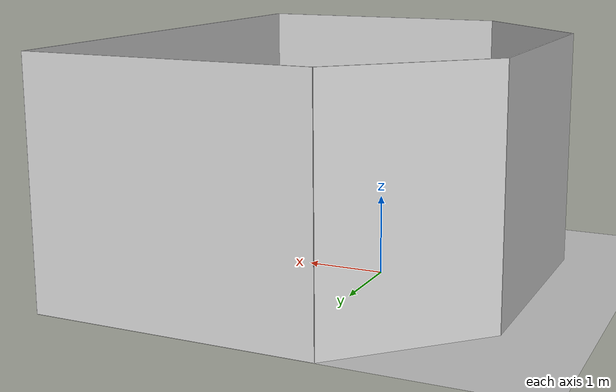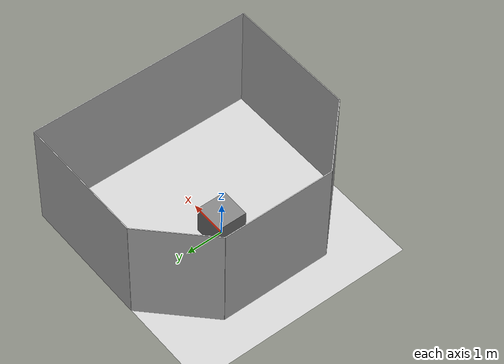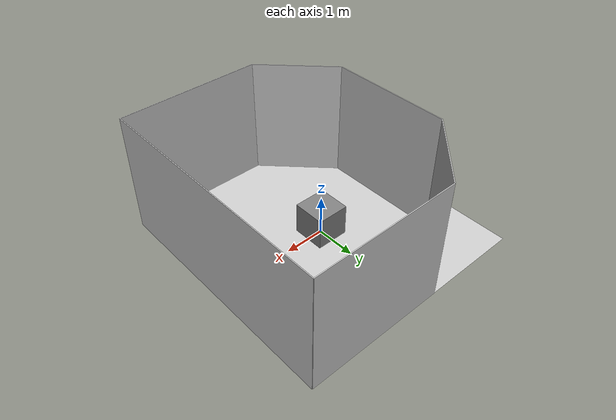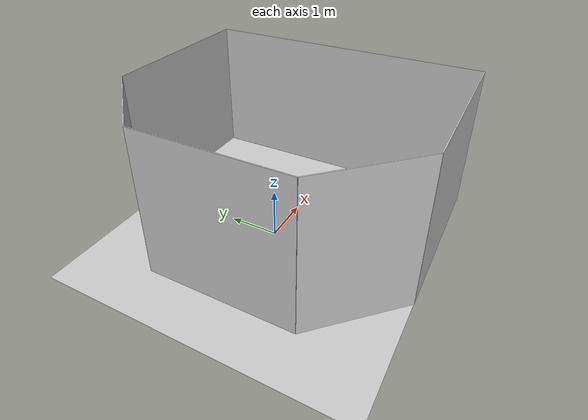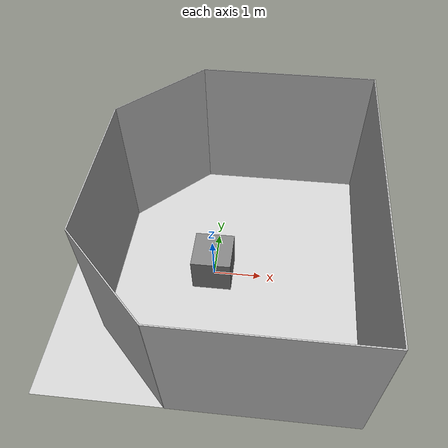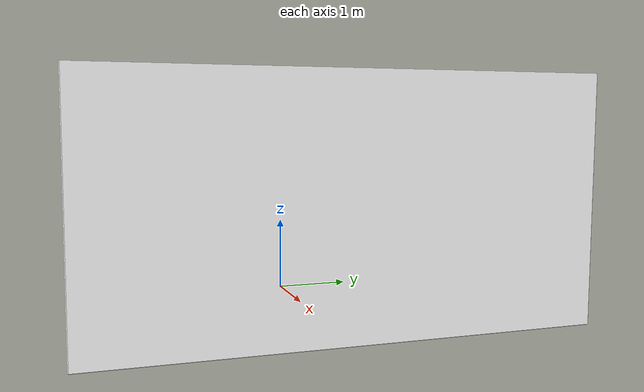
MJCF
<mujoco model="table_arena">
  <asset>
    <texture builtin="gradient" height="256" rgb1=".9 .9 1." rgb2=".2 .3 .4" type="skybox" width="256"/>
    <texture file="../textures/light-gray-floor-tile.png" type="2d" name="texplane"/>
    <material name="floorplane" reflectance="0.01" shininess="0.0" specular="0.0" texrepeat="2 2" texture="texplane" texuniform="true"/>
    <!-- ceramic table texture and material-->
    <texture file="../textures/ceramic.png" type="cube" name="tex-ceramic"/>
    <material name="table_ceramic" reflectance="0.0" shininess="0.0" specular="0.2" texrepeat="1 1" texture="tex-ceramic" />
    <!-- steel legs -->
    <texture file="../textures/steel-brushed.png" type="cube" name="tex-steel-brushed"/>
    <material name="table_legs_metal" reflectance="0.8" shininess="0.8" texrepeat="1 1" texture="tex-steel-brushed" />
    <!-- plaster walls -->
    <texture file="../textures/light-gray-plaster.png" type="2d" name="tex-light-gray-plaster"/>
    <material name="walls_mat" reflectance="0.0" shininess="0.1" specular="0.1" texrepeat="3 3" texture="tex-light-gray-plaster" texuniform="true" />
    <!-- added table texture and material -->
    <texture  name="cherry" builtin="flat" height="512" width="512" rgb1="0.65 0.36 0.33" rgb2="0.65 0.36 0.33"/>
    <material name="cherry" texture="cherry" />
    <texture  name="dark" builtin="flat" height="512" width="512" rgb1="0.1 0.1 0.1" rgb2="0.1 0.1 0.1"/>
    <material name="dark" texture="dark" />
    <texture  name="white" builtin="flat" height="512" width="512" rgb1="1.0 1.0 1.0" rgb2="1.0 1.0 1.0"/>
    <material name="white" texture="white" />
    <texture file="../textures/light-wood.png" type="2d" name="tex-light-wood"/>
    <texture file="../textures/dark-wood.png" type="2d" name="tex-dark-wood"/>
    <material name="light-wood" reflectance="0" texrepeat="2 2" texture="tex-light-wood" texuniform="true"/>
    <material name="dark-wood" reflectance="0" texrepeat="2 2" texture="tex-dark-wood" texuniform="true"/>
    <texture file="../textures/martin_novak_wood_table.png" type="2d" name="tex-novak-wood"/>
    <material name="novak-wood" reflectance="0" texrepeat="2 2" texture="tex-novak-wood" texuniform="true"/>
    <texture file="../textures/wood-varnished-panels.png" type="2d" name="tex-varnished-wood"/>
    <material name="varnished-wood" reflectance="0" texrepeat="2 2" texture="tex-varnished-wood" texuniform="true"/>
    <texture file="../textures/gray-plaster.png" type="2d" name="tex-gray-plaster"/>
    <material name="gray-plaster" reflectance="0" texrepeat="2 2" texture="tex-gray-plaster" texuniform="true"/>
    <texture file="../textures/wood-tiles.png" type="2d" name="tex-wood-tiles"/>
    <material name="wood-tiles" reflectance="0" texrepeat="2 2" texture="tex-wood-tiles" texuniform="true"/>
  </asset>
  <worldbody>
    <!-- Floor -->
    <geom condim="3" group="1" material="floorplane" name="floor" pos="0 0 0" size="3 3 .125" type="plane"/>
    <!-- Walls (visual only) -->
    <geom pos="-1.25 2.25 1.5" quat="0.6532815 0.6532815 0.2705981 0.2705981" size="1.06 1.5 0.01" type="box" conaffinity="0" contype="0" group="1" name="wall_leftcorner_visual" material="walls_mat"/>
    <geom pos="-1.25 -2.25 1.5" quat="0.6532815 0.6532815 -0.2705981 -0.2705981" size="1.06 1.5 0.01" type="box" conaffinity="0" contype="0" group="1" name="wall_rightcorner_visual" material="walls_mat"/>
    <geom pos="1.25 3 1.5" quat="0.7071 0.7071 0 0" size="1.75 1.5 0.01" type="box" conaffinity="0" contype="0" group="1" name="wall_left_visual" material="walls_mat"/>
    <geom pos="1.25 -3 1.5" quat="0.7071 -0.7071 0 0" size="1.75 1.5 0.01" type="box" conaffinity="0" contype="0" group="1" name="wall_right_visual" material="walls_mat"/>
    <geom pos="-2 0 1.5" quat="0.5 0.5 0.5 0.5" size="1.5 1.5 0.01" type="box" conaffinity="0" contype="0" group="1" name="wall_rear_visual" material="walls_mat"/>
    <geom pos="3 0 1.5" quat="0.5 0.5 -0.5 -0.5" size="3 1.5 0.01" type="box" conaffinity="0" contype="0" group="1" name="wall_front_visual" material="walls_mat"/>
    <!-- Table body -->
    <body name="table" pos="0 0 0.4">
      <geom pos="0 0 0" size="0.4 0.4 0.4" type="box" group="0" name="table_collision" friction="1 0.005 0.0001"/>
      <geom pos="0 0 0" size="0.4 0.4 0.4" type="box" conaffinity="0" contype="0" group="1" name="table_visual" material="table_ceramic"/>
      <site pos="0 0 0.4" name="table_top" size="0.001 0.001 0.001" rgba="1 1 1 1"/>
      <!-- Legs (visual only) -->
      <geom pos="0 0 0" size="0.05 0.1" type="cylinder" conaffinity="0" contype="0" group="1" name="table_leg1_visual" material="table_legs_metal"/>
      <geom pos="0 0 0" size="0.05 0.1" type="cylinder" conaffinity="0" contype="0" group="1" name="table_leg2_visual" material="table_legs_metal"/>
      <geom pos="0 0 0" size="0.05 0.1" type="cylinder" conaffinity="0" contype="0" group="1" name="table_leg3_visual" material="table_legs_metal"/>
      <geom pos="0 0 0" size="0.05 0.1" type="cylinder" conaffinity="0" contype="0" group="1" name="table_leg4_visual" material="table_legs_metal"/>
    </body>
    <light pos="1.0 1.0 1.5" dir="-0.2 -0.2 -1" specular="0.3 0.3 0.3" directional="true" castshadow="false"/>
    <!-- front view -->
    <camera mode="fixed" name="frontview" pos="1.6 0 1.45" quat="0.56 0.43 0.43 0.56"/>
    <!-- bird view -->
    <camera mode="fixed" name="birdview" pos="-0.2 0 3.0" quat="0.7071 0 0 0.7071"/>
    <!-- agent view -->
    <camera mode="fixed" name="agentview" pos="0.5 0 1.35" quat="0.653 0.271 0.271 0.653"/>
    <!-- side view -->
    <camera mode="fixed" name="sideview" pos="-0.05651774593317116 1.2761224129427358 1.4879572214102434" quat="0.009905065491771751 0.006877963156909582 0.5912228352893879 0.806418094001364" />
  </worldbody>
</mujoco>
